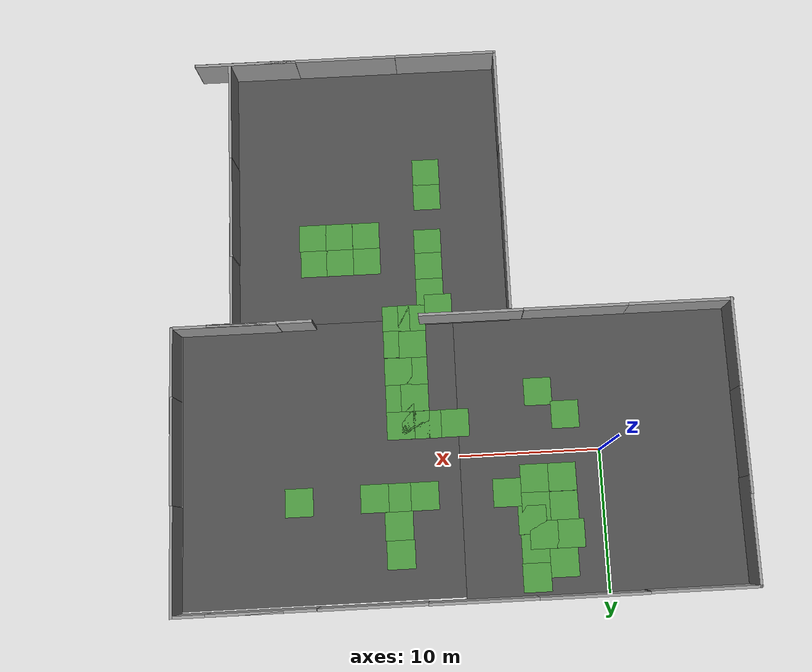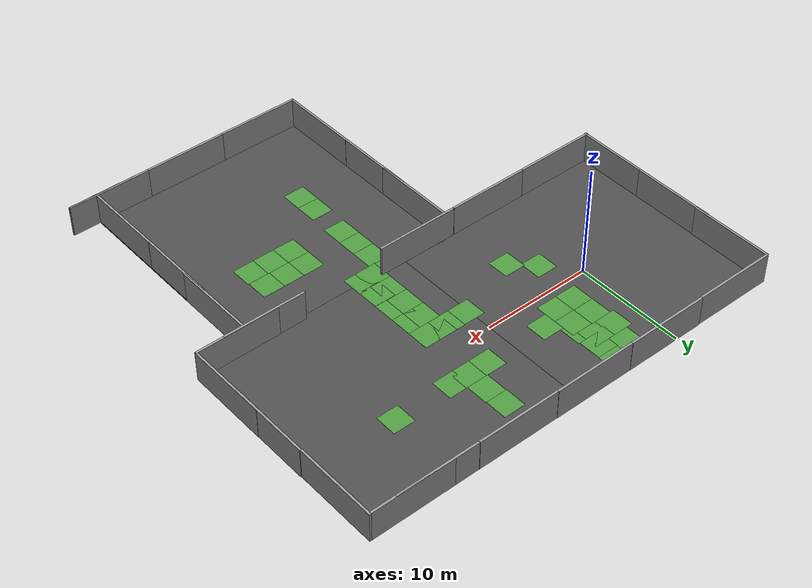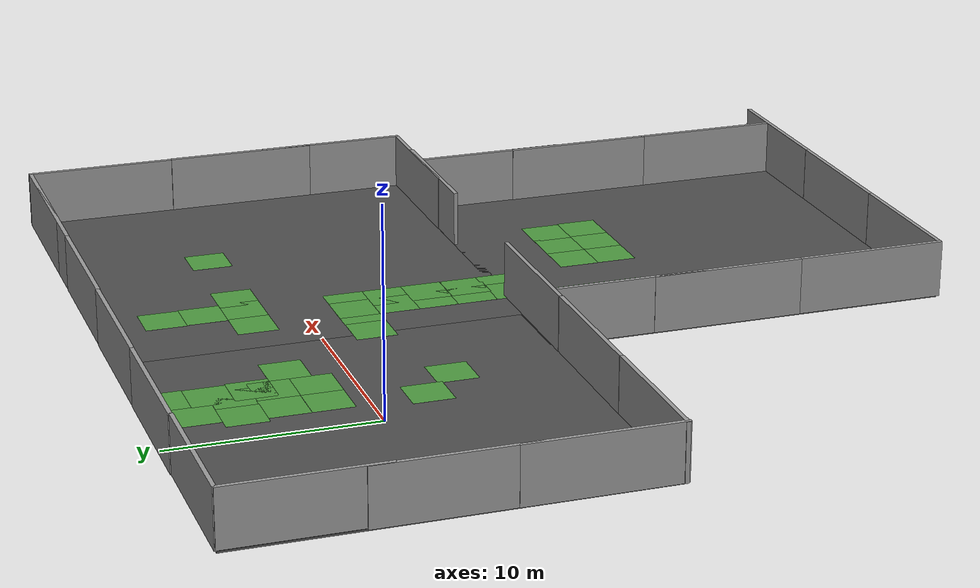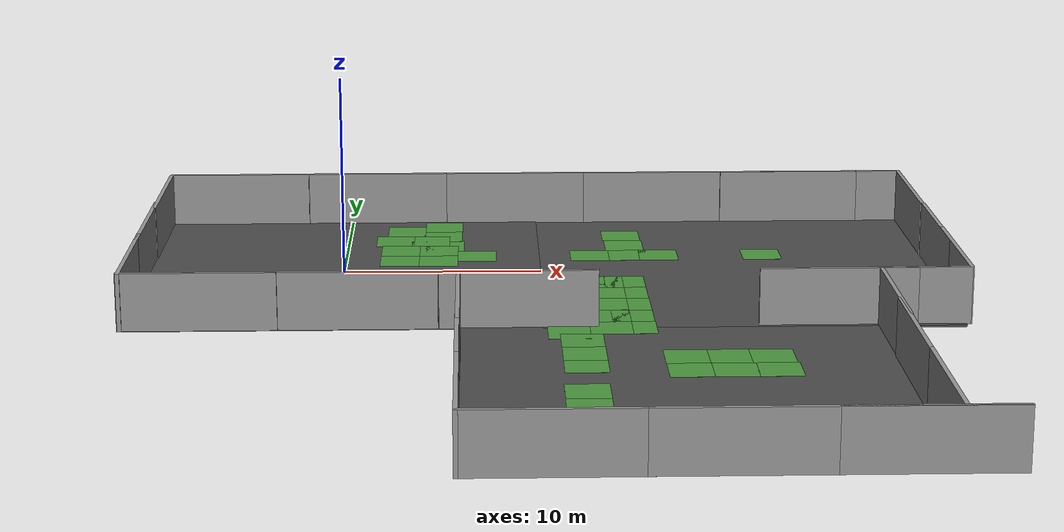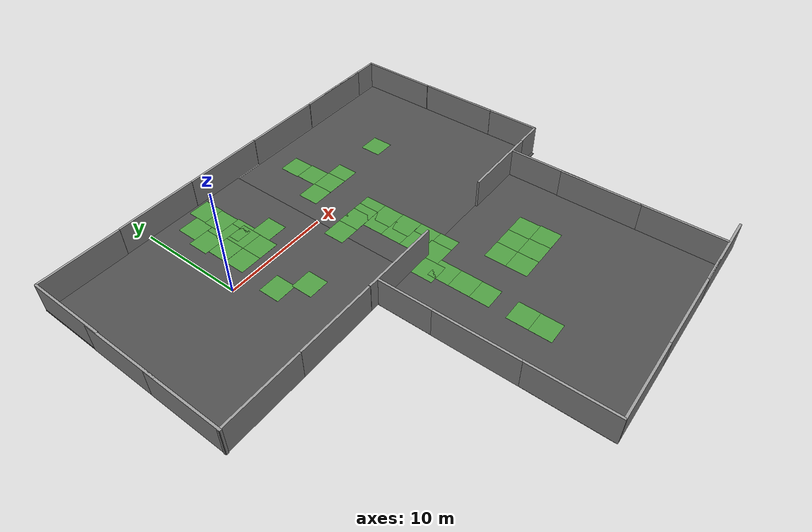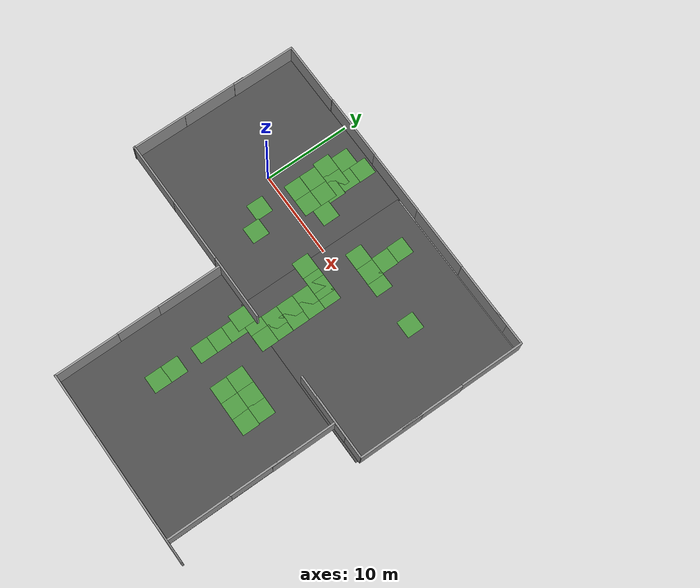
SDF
<sdf version="1.7">
 <world name="default">
  <light name="sun" type="directional">
   <pose>0 0 10 0 -0 0</pose>
   <diffuse>0.8 0.8 0.8 1</diffuse>
   <specular>0.1 0.1 0.1 1</specular>
   <attenuation>
    <range>1000</range>
    <constant>0.9</constant>
    <linear>0.01</linear>
    <quadratic>0.001</quadratic>
   </attenuation>
   <direction>-0.5 0.5 -1</direction>
   <spot><inner_angle>0</inner_angle><outer_angle>0</outer_angle><falloff>0</falloff></spot>
  </light>
  <gravity>0 0 -9.8</gravity>
  <magnetic_field>6e-06 2.3e-05 -4.2e-05</magnetic_field>
  <atmosphere type="adiabatic"/>
  <physics name="default_physics" default="0" type="ode">
   <max_step_size>0.001</max_step_size>
   <real_time_factor>1</real_time_factor>
   <real_time_update_rate>1000</real_time_update_rate>
  </physics>
  <scene><ambient>0.4 0.4 0.4 1</ambient><background>0.7 0.7 0.7 1</background><shadows>1</shadows></scene>
  <spherical_coordinates>
   <surface_model>EARTH_WGS84</surface_model>
   <latitude_deg>0</latitude_deg>
   <longitude_deg>0</longitude_deg>
   <elevation>0</elevation>
   <heading_deg>0</heading_deg>
  </spherical_coordinates>
  <model name="asphalt_plane">
   <static>1</static>
   <link name="link">
    <collision name="collision"><geometry><box><size>20 20 0.1</size></box></geometry></collision>
    <visual name="visual">
     <cast_shadows>0</cast_shadows>
     <geometry><box><size>20 20 0.1</size></box></geometry>
     <material>
      <script>
       <uri>model://asphalt_plane/materials/scripts</uri>
       <uri>model://asphalt_plane/materials/textures</uri>
       <name>vrc/asphalt</name>
      </script>
     </material>
    </visual>
   </link>
  </model>
  <model name="grey_wall">
   <static>1</static>
   <link name="link">
    <pose>0 0 1.4 0 -0 0</pose>
    <collision name="collision"><geometry><box><size>7.5 0.2 2.8</size></box></geometry></collision>
    <visual name="visual">
     <cast_shadows>0</cast_shadows>
     <geometry><box><size>7.5 0.2 2.8</size></box></geometry>
     <material>
      <script>
       <uri>model://grey_wall/materials/scripts</uri>
       <uri>model://grey_wall/materials/textures</uri>
       <name>vrc/grey_wall</name>
      </script>
     </material>
    </visual>
   </link>
   <pose>-6.34299 -9.98083 0 0 -0 0</pose>
  </model>
  <model name="grey_wall_clone">
   <static>1</static>
   <link name="link">
    <pose>0 0 1.4 0 -0 0</pose>
    <collision name="collision"><geometry><box><size>7.5 0.2 2.8</size></box></geometry></collision>
    <visual name="visual">
     <cast_shadows>0</cast_shadows>
     <geometry><box><size>7.5 0.2 2.8</size></box></geometry>
     <material>
      <script>
       <uri>model://grey_wall/materials/scripts</uri>
       <uri>model://grey_wall/materials/textures</uri>
       <name>vrc/grey_wall</name>
      </script>
     </material>
    </visual>
   </link>
   <pose>1.16889 -9.97033 0 0 -0 0</pose>
  </model>
  <model name="grey_wall_clone_0">
   <static>1</static>
   <link name="link">
    <pose>0 0 1.4 0 -0 0</pose>
    <collision name="collision"><geometry><box><size>7.5 0.2 2.8</size></box></geometry></collision>
    <visual name="visual">
     <cast_shadows>0</cast_shadows>
     <geometry><box><size>7.5 0.2 2.8</size></box></geometry>
     <material>
      <script>
       <uri>model://grey_wall/materials/scripts</uri>
       <uri>model://grey_wall/materials/textures</uri>
       <name>vrc/grey_wall</name>
      </script>
     </material>
    </visual>
   </link>
   <pose>8.70546 -9.9612 0 0 -0 0</pose>
  </model>
  <model name="asphalt_plane_0">
   <static>1</static>
   <link name="link">
    <collision name="collision"><geometry><box><size>20 20 0.1</size></box></geometry></collision>
    <visual name="visual">
     <cast_shadows>0</cast_shadows>
     <geometry><box><size>20 20 0.1</size></box></geometry>
     <material>
      <script>
       <uri>model://asphalt_plane/materials/scripts</uri>
       <uri>model://asphalt_plane/materials/textures</uri>
       <name>vrc/asphalt</name>
      </script>
     </material>
    </visual>
   </link>
   <pose>19.8226 -0.232056 0 0 -0 0</pose>
  </model>
  <model name="grey_wall_clone_0_clone_clone">
   <static>1</static>
   <link name="link">
    <pose>0 0 1.4 0 -0 0</pose>
    <collision name="collision"><geometry><box><size>7.5 0.2 2.8</size></box></geometry></collision>
    <visual name="visual">
     <cast_shadows>0</cast_shadows>
     <geometry><box><size>7.5 0.2 2.8</size></box></geometry>
     <material>
      <script>
       <uri>model://grey_wall/materials/scripts</uri>
       <uri>model://grey_wall/materials/textures</uri>
       <name>vrc/grey_wall</name>
      </script>
     </material>
    </visual>
   </link>
   <pose>23.7504 -9.91232 0 0 -0 0</pose>
  </model>
  <model name="grey_wall_clone_0_clone_clone_1">
   <static>1</static>
   <link name="link">
    <pose>0 0 1.4 0 -0 0</pose>
    <collision name="collision"><geometry><box><size>7.5 0.2 2.8</size></box></geometry></collision>
    <visual name="visual">
     <cast_shadows>0</cast_shadows>
     <geometry><box><size>7.5 0.2 2.8</size></box></geometry>
     <material>
      <script>
       <uri>model://grey_wall/materials/scripts</uri>
       <uri>model://grey_wall/materials/textures</uri>
       <name>vrc/grey_wall</name>
      </script>
     </material>
    </visual>
   </link>
   <pose>1.3555 10.0153 0 0 -0 0</pose>
  </model>
  <model name="grey_wall_clone_0_clone_clone_2">
   <static>1</static>
   <link name="link">
    <pose>0 0 1.4 0 -0 0</pose>
    <collision name="collision"><geometry><box><size>7.5 0.2 2.8</size></box></geometry></collision>
    <visual name="visual">
     <cast_shadows>0</cast_shadows>
     <geometry><box><size>7.5 0.2 2.8</size></box></geometry>
     <material>
      <script>
       <uri>model://grey_wall/materials/scripts</uri>
       <uri>model://grey_wall/materials/textures</uri>
       <name>vrc/grey_wall</name>
      </script>
     </material>
    </visual>
   </link>
   <pose>8.86552 9.99863 0 0 -0 0</pose>
  </model>
  <model name="grey_wall_clone_0_clone_clone_0">
   <static>1</static>
   <link name="link">
    <pose>0 0 1.4 0 -0 0</pose>
    <collision name="collision"><geometry><box><size>7.5 0.2 2.8</size></box></geometry></collision>
    <visual name="visual">
     <cast_shadows>0</cast_shadows>
     <geometry><box><size>7.5 0.2 2.8</size></box></geometry>
     <material>
      <script>
       <uri>model://grey_wall/materials/scripts</uri>
       <uri>model://grey_wall/materials/textures</uri>
       <name>vrc/grey_wall</name>
      </script>
     </material>
    </visual>
   </link>
   <pose>-6.16796 9.97781 0 0 -0 0</pose>
  </model>
  <model name="grey_wall_clone_0_clone_clone_3">
   <static>1</static>
   <link name="link">
    <pose>0 0 1.4 0 -0 0</pose>
    <collision name="collision"><geometry><box><size>7.5 0.2 2.8</size></box></geometry></collision>
    <visual name="visual">
     <cast_shadows>0</cast_shadows>
     <geometry><box><size>7.5 0.2 2.8</size></box></geometry>
     <material>
      <script>
       <uri>model://grey_wall/materials/scripts</uri>
       <uri>model://grey_wall/materials/textures</uri>
       <name>vrc/grey_wall</name>
      </script>
     </material>
    </visual>
   </link>
   <pose>16.365 9.97288 0 0 -0 0</pose>
  </model>
  <model name="grey_wall_clone_0_clone_clone_4">
   <static>1</static>
   <link name="link">
    <pose>0 0 1.4 0 -0 0</pose>
    <collision name="collision"><geometry><box><size>7.5 0.2 2.8</size></box></geometry></collision>
    <visual name="visual">
     <cast_shadows>0</cast_shadows>
     <geometry><box><size>7.5 0.2 2.8</size></box></geometry>
     <material>
      <script>
       <uri>model://grey_wall/materials/scripts</uri>
       <uri>model://grey_wall/materials/textures</uri>
       <name>vrc/grey_wall</name>
      </script>
     </material>
    </visual>
   </link>
   <pose>23.8974 9.95874 0 0 -0 0</pose>
  </model>
  <model name="grey_wall_clone_0_clone_clone_4_clone">
   <static>1</static>
   <link name="link">
    <pose>0 0 1.4 0 -0 0</pose>
    <collision name="collision"><geometry><box><size>7.5 0.2 2.8</size></box></geometry></collision>
    <visual name="visual">
     <cast_shadows>0</cast_shadows>
     <geometry><box><size>7.5 0.2 2.8</size></box></geometry>
     <material>
      <script>
       <uri>model://grey_wall/materials/scripts</uri>
       <uri>model://grey_wall/materials/textures</uri>
       <name>vrc/grey_wall</name>
      </script>
     </material>
    </visual>
   </link>
   <pose>29.9378 6.30804 0 0 -0 1.57</pose>
  </model>
  <model name="grey_wall_clone_0_clone_clone_4_clone_0">
   <static>1</static>
   <link name="link">
    <pose>0 0 1.4 0 -0 0</pose>
    <collision name="collision"><geometry><box><size>7.5 0.2 2.8</size></box></geometry></collision>
    <visual name="visual">
     <cast_shadows>0</cast_shadows>
     <geometry><box><size>7.5 0.2 2.8</size></box></geometry>
     <material>
      <script>
       <uri>model://grey_wall/materials/scripts</uri>
       <uri>model://grey_wall/materials/textures</uri>
       <name>vrc/grey_wall</name>
      </script>
     </material>
    </visual>
   </link>
   <pose>26.2746 -9.87846 0 0 -0 0</pose>
  </model>
  <model name="grey_wall_clone_0_clone_clone_4_clone_1">
   <static>1</static>
   <link name="link">
    <pose>0 0 1.4 0 -0 0</pose>
    <collision name="collision"><geometry><box><size>7.5 0.2 2.8</size></box></geometry></collision>
    <visual name="visual">
     <cast_shadows>0</cast_shadows>
     <geometry><box><size>7.5 0.2 2.8</size></box></geometry>
     <material>
      <script>
       <uri>model://grey_wall/materials/scripts</uri>
       <uri>model://grey_wall/materials/textures</uri>
       <name>vrc/grey_wall</name>
      </script>
     </material>
    </visual>
   </link>
   <pose>26.1143 9.96003 0 0 -0 0</pose>
  </model>
  <model name="grey_wall_clone_0_clone_clone_4_clone_clone">
   <static>1</static>
   <link name="link">
    <pose>0 0 1.4 0 -0 0</pose>
    <collision name="collision"><geometry><box><size>7.5 0.2 2.8</size></box></geometry></collision>
    <visual name="visual">
     <cast_shadows>0</cast_shadows>
     <geometry><box><size>7.5 0.2 2.8</size></box></geometry>
     <material>
      <script>
       <uri>model://grey_wall/materials/scripts</uri>
       <uri>model://grey_wall/materials/textures</uri>
       <name>vrc/grey_wall</name>
      </script>
     </material>
    </visual>
   </link>
   <pose>29.9748 -1.21482 0 0 -0 1.57</pose>
  </model>
  <model name="grey_wall_clone_0_clone_clone_4_clone_clone_0">
   <static>1</static>
   <link name="link">
    <pose>0 0 1.4 0 -0 0</pose>
    <collision name="collision"><geometry><box><size>7.5 0.2 2.8</size></box></geometry></collision>
    <visual name="visual">
     <cast_shadows>0</cast_shadows>
     <geometry><box><size>7.5 0.2 2.8</size></box></geometry>
     <material>
      <script>
       <uri>model://grey_wall/materials/scripts</uri>
       <uri>model://grey_wall/materials/textures</uri>
       <name>vrc/grey_wall</name>
      </script>
     </material>
    </visual>
   </link>
   <pose>29.9905 -6.17844 0 0 -0 1.57</pose>
  </model>
  <model name="grey_wall_clone_0_clone_clone_4_clone_clone_1">
   <static>1</static>
   <link name="link">
    <pose>0 0 1.4 0 -0 0</pose>
    <collision name="collision"><geometry><box><size>7.5 0.2 2.8</size></box></geometry></collision>
    <visual name="visual">
     <cast_shadows>0</cast_shadows>
     <geometry><box><size>7.5 0.2 2.8</size></box></geometry>
     <material>
      <script>
       <uri>model://grey_wall/materials/scripts</uri>
       <uri>model://grey_wall/materials/textures</uri>
       <name>vrc/grey_wall</name>
      </script>
     </material>
    </visual>
   </link>
   <pose>-9.87952 6.28271 0 0 -0 1.57</pose>
  </model>
  <model name="grey_wall_clone_0_clone_clone_4_clone_clone_2">
   <static>1</static>
   <link name="link">
    <pose>0 0 1.4 0 -0 0</pose>
    <collision name="collision"><geometry><box><size>7.5 0.2 2.8</size></box></geometry></collision>
    <visual name="visual">
     <cast_shadows>0</cast_shadows>
     <geometry><box><size>7.5 0.2 2.8</size></box></geometry>
     <material>
      <script>
       <uri>model://grey_wall/materials/scripts</uri>
       <uri>model://grey_wall/materials/textures</uri>
       <name>vrc/grey_wall</name>
      </script>
     </material>
    </visual>
   </link>
   <pose>-9.94969 -6.38748 0 0 -0 1.57</pose>
  </model>
  <model name="grey_wall_clone_0_clone_clone_4_clone_clone_3">
   <static>1</static>
   <link name="link">
    <pose>0 0 1.4 0 -0 0</pose>
    <collision name="collision"><geometry><box><size>7.5 0.2 2.8</size></box></geometry></collision>
    <visual name="visual">
     <cast_shadows>0</cast_shadows>
     <geometry><box><size>7.5 0.2 2.8</size></box></geometry>
     <material>
      <script>
       <uri>model://grey_wall/materials/scripts</uri>
       <uri>model://grey_wall/materials/textures</uri>
       <name>vrc/grey_wall</name>
      </script>
     </material>
    </visual>
   </link>
   <pose>-9.93378 0.027886 0 0 -0 1.57</pose>
  </model>
  <audio><device>default</device></audio>
  <model name="asphalt_plane_1">
   <static>1</static>
   <link name="link">
    <collision name="collision"><geometry><box><size>20 20 0.1</size></box></geometry></collision>
    <visual name="visual">
     <cast_shadows>0</cast_shadows>
     <geometry><box><size>20 20 0.1</size></box></geometry>
     <material>
      <script>
       <uri>model://asphalt_plane/materials/scripts</uri>
       <uri>model://asphalt_plane/materials/textures</uri>
       <name>vrc/asphalt</name>
      </script>
     </material>
    </visual>
   </link>
   <pose>15.7958 -19.8064 0 0 -0 0</pose>
  </model>
  <model name="grey_wall_0">
   <static>1</static>
   <link name="link">
    <pose>0 0 1.4 0 -0 0</pose>
    <collision name="collision"><geometry><box><size>7.5 0.2 2.8</size></box></geometry></collision>
    <visual name="visual">
     <cast_shadows>0</cast_shadows>
     <geometry><box><size>7.5 0.2 2.8</size></box></geometry>
     <material>
      <script>
       <uri>model://grey_wall/materials/scripts</uri>
       <uri>model://grey_wall/materials/textures</uri>
       <name>vrc/grey_wall</name>
      </script>
     </material>
    </visual>
   </link>
   <pose>9.57925 -29.847 0 0 -0 0</pose>
  </model>
  <model name="grey_wall_0_clone">
   <static>1</static>
   <link name="link">
    <pose>0 0 1.4 0 -0 0</pose>
    <collision name="collision"><geometry><box><size>7.5 0.2 2.8</size></box></geometry></collision>
    <visual name="visual">
     <cast_shadows>0</cast_shadows>
     <geometry><box><size>7.5 0.2 2.8</size></box></geometry>
     <material>
      <script>
       <uri>model://grey_wall/materials/scripts</uri>
       <uri>model://grey_wall/materials/textures</uri>
       <name>vrc/grey_wall</name>
      </script>
     </material>
    </visual>
   </link>
   <pose>17.0707 -29.8389 0 0 -0 0</pose>
  </model>
  <model name="grey_wall_0_clone_0">
   <static>1</static>
   <link name="link">
    <pose>0 0 1.4 0 -0 0</pose>
    <collision name="collision"><geometry><box><size>7.5 0.2 2.8</size></box></geometry></collision>
    <visual name="visual">
     <cast_shadows>0</cast_shadows>
     <geometry><box><size>7.5 0.2 2.8</size></box></geometry>
     <material>
      <script>
       <uri>model://grey_wall/materials/scripts</uri>
       <uri>model://grey_wall/materials/textures</uri>
       <name>vrc/grey_wall</name>
      </script>
     </material>
    </visual>
   </link>
   <pose>24.5202 -29.8309 0 0 -0 0</pose>
  </model>
  <model name="grey_wall_0_clone_1">
   <static>1</static>
   <link name="link">
    <pose>0 0 1.4 0 -0 0</pose>
    <collision name="collision"><geometry><box><size>7.5 0.2 2.8</size></box></geometry></collision>
    <visual name="visual">
     <cast_shadows>0</cast_shadows>
     <geometry><box><size>7.5 0.2 2.8</size></box></geometry>
     <material>
      <script>
       <uri>model://grey_wall/materials/scripts</uri>
       <uri>model://grey_wall/materials/textures</uri>
       <name>vrc/grey_wall</name>
      </script>
     </material>
    </visual>
   </link>
   <pose>24.5331 -29.8401 0 0 -0 0</pose>
  </model>
  <model name="grey_wall_0_clone_0_clone">
   <static>1</static>
   <link name="link">
    <pose>0 0 1.4 0 -0 0</pose>
    <collision name="collision"><geometry><box><size>7.5 0.2 2.8</size></box></geometry></collision>
    <visual name="visual">
     <cast_shadows>0</cast_shadows>
     <geometry><box><size>7.5 0.2 2.8</size></box></geometry>
     <material>
      <script>
       <uri>model://grey_wall/materials/scripts</uri>
       <uri>model://grey_wall/materials/textures</uri>
       <name>vrc/grey_wall</name>
      </script>
     </material>
    </visual>
   </link>
   <pose>25.6822 -18.7134 0 0 -0 1.57134</pose>
  </model>
  <model name="grey_wall_0_clone_0_clone_0">
   <static>1</static>
   <link name="link">
    <pose>0 0 1.4 0 -0 0</pose>
    <collision name="collision"><geometry><box><size>7.5 0.2 2.8</size></box></geometry></collision>
    <visual name="visual">
     <cast_shadows>0</cast_shadows>
     <geometry><box><size>7.5 0.2 2.8</size></box></geometry>
     <material>
      <script>
       <uri>model://grey_wall/materials/scripts</uri>
       <uri>model://grey_wall/materials/textures</uri>
       <name>vrc/grey_wall</name>
      </script>
     </material>
    </visual>
   </link>
   <pose>25.7225 -13.7256 0 0 -0 1.57134</pose>
  </model>
  <model name="grey_wall_0_clone_0_clone_1">
   <static>1</static>
   <link name="link">
    <pose>0 0 1.4 0 -0 0</pose>
    <collision name="collision"><geometry><box><size>7.5 0.2 2.8</size></box></geometry></collision>
    <visual name="visual">
     <cast_shadows>0</cast_shadows>
     <geometry><box><size>7.5 0.2 2.8</size></box></geometry>
     <material>
      <script>
       <uri>model://grey_wall/materials/scripts</uri>
       <uri>model://grey_wall/materials/textures</uri>
       <name>vrc/grey_wall</name>
      </script>
     </material>
    </visual>
   </link>
   <pose>5.87461 -26.2028 0 0 -0 1.57134</pose>
  </model>
  <model name="grey_wall_0_clone_0_clone_2">
   <static>1</static>
   <link name="link">
    <pose>0 0 1.4 0 -0 0</pose>
    <collision name="collision"><geometry><box><size>7.5 0.2 2.8</size></box></geometry></collision>
    <visual name="visual">
     <cast_shadows>0</cast_shadows>
     <geometry><box><size>7.5 0.2 2.8</size></box></geometry>
     <material>
      <script>
       <uri>model://grey_wall/materials/scripts</uri>
       <uri>model://grey_wall/materials/textures</uri>
       <name>vrc/grey_wall</name>
      </script>
     </material>
    </visual>
   </link>
   <pose>5.85932 -18.753 0 0 -0 1.57134</pose>
  </model>
  <model name="grey_wall_0_clone_0_clone_3">
   <static>1</static>
   <link name="link">
    <pose>0 0 1.4 0 -0 0</pose>
    <collision name="collision"><geometry><box><size>7.5 0.2 2.8</size></box></geometry></collision>
    <visual name="visual">
     <cast_shadows>0</cast_shadows>
     <geometry><box><size>7.5 0.2 2.8</size></box></geometry>
     <material>
      <script>
       <uri>model://grey_wall/materials/scripts</uri>
       <uri>model://grey_wall/materials/textures</uri>
       <name>vrc/grey_wall</name>
      </script>
     </material>
    </visual>
   </link>
   <pose>5.87054 -13.8283 0 0 -0 1.57134</pose>
  </model>
  <model name="grass_7">
   <static>1</static>
   <link name="grass_plane">
    <visual name="visual">
     <pose>0 0 0.07 0 -0 0</pose>
     <cast_shadows>0</cast_shadows>
     <geometry><plane><normal>0 0 1</normal><size>2 2</size></plane></geometry>
     <material>
      <script>
       <uri>model://grass/materials/scripts</uri>
       <uri>model://grass/materials/textures</uri>
       <name>vrc/grass_small</name>
      </script>
     </material>
    </visual>
   </link>
   <pose>4.12441 -4.42703 0 0 -0 0</pose>
  </model>
  <model name="grass_8">
   <static>1</static>
   <link name="grass_plane">
    <visual name="visual">
     <pose>0 0 0.07 0 -0 0</pose>
     <cast_shadows>0</cast_shadows>
     <geometry><plane><normal>0 0 1</normal><size>2 2</size></plane></geometry>
     <material>
      <script>
       <uri>model://grass/materials/scripts</uri>
       <uri>model://grass/materials/textures</uri>
       <name>vrc/grass_small</name>
      </script>
     </material>
    </visual>
   </link>
   <pose>2.25707 -2.67802 0 0 -0 0</pose>
  </model>
  <model name="grass_9">
   <static>1</static>
   <link name="grass_plane">
    <visual name="visual">
     <pose>0 0 0.07 0 -0 0</pose>
     <cast_shadows>0</cast_shadows>
     <geometry><plane><normal>0 0 1</normal><size>2 2</size></plane></geometry>
     <material>
      <script>
       <uri>model://grass/materials/scripts</uri>
       <uri>model://grass/materials/textures</uri>
       <name>vrc/grass_small</name>
      </script>
     </material>
    </visual>
   </link>
   <pose>2.77029 1.78537 0 0 -0 0</pose>
  </model>
  <model name="grass_10">
   <static>1</static>
   <link name="grass_plane">
    <visual name="visual">
     <pose>0 0 0.07 0 -0 0</pose>
     <cast_shadows>0</cast_shadows>
     <geometry><plane><normal>0 0 1</normal><size>2 2</size></plane></geometry>
     <material>
      <script>
       <uri>model://grass/materials/scripts</uri>
       <uri>model://grass/materials/textures</uri>
       <name>vrc/grass_small</name>
      </script>
     </material>
    </visual>
   </link>
   <pose>4.76419 1.781 0 0 -0 0</pose>
  </model>
  <model name="grass_11">
   <static>1</static>
   <link name="grass_plane">
    <visual name="visual">
     <pose>0 0 0.07 0 -0 0</pose>
     <cast_shadows>0</cast_shadows>
     <geometry><plane><normal>0 0 1</normal><size>2 2</size></plane></geometry>
     <material>
      <script>
       <uri>model://grass/materials/scripts</uri>
       <uri>model://grass/materials/textures</uri>
       <name>vrc/grass_small</name>
      </script>
     </material>
    </visual>
   </link>
   <pose>4.76996 3.77141 0 0 -0 0</pose>
  </model>
  <model name="grass_12">
   <static>1</static>
   <link name="grass_plane">
    <visual name="visual">
     <pose>0 0 0.07 0 -0 0</pose>
     <cast_shadows>0</cast_shadows>
     <geometry><plane><normal>0 0 1</normal><size>2 2</size></plane></geometry>
     <material>
      <script>
       <uri>model://grass/materials/scripts</uri>
       <uri>model://grass/materials/textures</uri>
       <name>vrc/grass_small</name>
      </script>
     </material>
    </visual>
   </link>
   <pose>2.77076 3.79474 0 0 -0 0</pose>
  </model>
  <model name="grass_13">
   <static>1</static>
   <link name="grass_plane">
    <visual name="visual">
     <pose>0 0 0.07 0 -0 0</pose>
     <cast_shadows>0</cast_shadows>
     <geometry><plane><normal>0 0 1</normal><size>2 2</size></plane></geometry>
     <material>
      <script>
       <uri>model://grass/materials/scripts</uri>
       <uri>model://grass/materials/textures</uri>
       <name>vrc/grass_small</name>
      </script>
     </material>
    </visual>
   </link>
   <pose>5.07402 4.69573 0 0 -0 0</pose>
  </model>
  <model name="grass_14">
   <static>1</static>
   <link name="grass_plane">
    <visual name="visual">
     <pose>0 0 0.07 0 -0 0</pose>
     <cast_shadows>0</cast_shadows>
     <geometry><plane><normal>0 0 1</normal><size>2 2</size></plane></geometry>
     <material>
      <script>
       <uri>model://grass/materials/scripts</uri>
       <uri>model://grass/materials/textures</uri>
       <name>vrc/grass_small</name>
      </script>
     </material>
    </visual>
   </link>
   <pose>2.44118 5.76888 0 0 -0 0</pose>
  </model>
  <model name="grass_15">
   <static>1</static>
   <link name="grass_plane">
    <visual name="visual">
     <pose>0 0 0.07 0 -0 0</pose>
     <cast_shadows>0</cast_shadows>
     <geometry><plane><normal>0 0 1</normal><size>2 2</size></plane></geometry>
     <material>
      <script>
       <uri>model://grass/materials/scripts</uri>
       <uri>model://grass/materials/textures</uri>
       <name>vrc/grass_small</name>
      </script>
     </material>
    </visual>
   </link>
   <pose>4.31467 5.7511 0 0 -0 0</pose>
  </model>
  <model name="grass_16">
   <static>1</static>
   <link name="grass_plane">
    <visual name="visual">
     <pose>0 0 0.07 0 -0 0</pose>
     <cast_shadows>0</cast_shadows>
     <geometry><plane><normal>0 0 1</normal><size>2 2</size></plane></geometry>
     <material>
      <script>
       <uri>model://grass/materials/scripts</uri>
       <uri>model://grass/materials/textures</uri>
       <name>vrc/grass_small</name>
      </script>
     </material>
    </visual>
   </link>
   <pose>4.95815 6.70014 0 0 -0 0</pose>
  </model>
  <model name="grass_17">
   <static>1</static>
   <link name="grass_plane">
    <visual name="visual">
     <pose>0 0 0.07 0 -0 0</pose>
     <cast_shadows>0</cast_shadows>
     <geometry><plane><normal>0 0 1</normal><size>2 2</size></plane></geometry>
     <material>
      <script>
       <uri>model://grass/materials/scripts</uri>
       <uri>model://grass/materials/textures</uri>
       <name>vrc/grass_small</name>
      </script>
     </material>
    </visual>
   </link>
   <pose>3.00465 7.76167 0 0 -0 0</pose>
  </model>
  <model name="grass_18">
   <static>1</static>
   <link name="grass_plane">
    <visual name="visual">
     <pose>0 0 0.07 0 -0 0</pose>
     <cast_shadows>0</cast_shadows>
     <geometry><plane><normal>0 0 1</normal><size>2 2</size></plane></geometry>
     <material>
      <script>
       <uri>model://grass/materials/scripts</uri>
       <uri>model://grass/materials/textures</uri>
       <name>vrc/grass_small</name>
      </script>
     </material>
    </visual>
   </link>
   <pose>4.99418 8.69495 0 0 -0 0</pose>
  </model>
  <model name="grass_19">
   <static>1</static>
   <link name="grass_plane">
    <visual name="visual">
     <pose>0 0 0.07 0 -0 0</pose>
     <cast_shadows>0</cast_shadows>
     <geometry><plane><normal>0 0 1</normal><size>2 2</size></plane></geometry>
     <material>
      <script>
       <uri>model://grass/materials/scripts</uri>
       <uri>model://grass/materials/textures</uri>
       <name>vrc/grass_small</name>
      </script>
     </material>
    </visual>
   </link>
   <pose>6.75658 2.70708 0 0 -0 0</pose>
  </model>
  <model name="grass_20">
   <static>1</static>
   <link name="grass_plane">
    <visual name="visual">
     <pose>0 0 0.07 0 -0 0</pose>
     <cast_shadows>0</cast_shadows>
     <geometry><plane><normal>0 0 1</normal><size>2 2</size></plane></geometry>
     <material>
      <script>
       <uri>model://grass/materials/scripts</uri>
       <uri>model://grass/materials/textures</uri>
       <name>vrc/grass_small</name>
      </script>
     </material>
    </visual>
   </link>
   <pose>12.6119 2.65209 0 0 -0 0</pose>
  </model>
  <model name="grass_21">
   <static>1</static>
   <link name="grass_plane">
    <visual name="visual">
     <pose>0 0 0.07 0 -0 0</pose>
     <cast_shadows>0</cast_shadows>
     <geometry><plane><normal>0 0 1</normal><size>2 2</size></plane></geometry>
     <material>
      <script>
       <uri>model://grass/materials/scripts</uri>
       <uri>model://grass/materials/textures</uri>
       <name>vrc/grass_small</name>
      </script>
     </material>
    </visual>
   </link>
   <pose>14.6105 2.65182 0 0 -0 0</pose>
  </model>
  <model name="grass_22">
   <static>1</static>
   <link name="grass_plane">
    <visual name="visual">
     <pose>0 0 0.07 0 -0 0</pose>
     <cast_shadows>0</cast_shadows>
     <geometry><plane><normal>0 0 1</normal><size>2 2</size></plane></geometry>
     <material>
      <script>
       <uri>model://grass/materials/scripts</uri>
       <uri>model://grass/materials/textures</uri>
       <name>vrc/grass_small</name>
      </script>
     </material>
    </visual>
   </link>
   <pose>16.1898 2.64487 0 0 -0 0</pose>
  </model>
  <model name="grass_23">
   <static>1</static>
   <link name="grass_plane">
    <visual name="visual">
     <pose>0 0 0.07 0 -0 0</pose>
     <cast_shadows>0</cast_shadows>
     <geometry><plane><normal>0 0 1</normal><size>2 2</size></plane></geometry>
     <material>
      <script>
       <uri>model://grass/materials/scripts</uri>
       <uri>model://grass/materials/textures</uri>
       <name>vrc/grass_small</name>
      </script>
     </material>
    </visual>
   </link>
   <pose>14.5111 4.64952 0 0 -0 0</pose>
  </model>
  <model name="grass_24">
   <static>1</static>
   <link name="grass_plane">
    <visual name="visual">
     <pose>0 0 0.07 0 -0 0</pose>
     <cast_shadows>0</cast_shadows>
     <geometry><plane><normal>0 0 1</normal><size>2 2</size></plane></geometry>
     <material>
      <script>
       <uri>model://grass/materials/scripts</uri>
       <uri>model://grass/materials/textures</uri>
       <name>vrc/grass_small</name>
      </script>
     </material>
    </visual>
   </link>
   <pose>14.453 6.64404 0 0 -0 0</pose>
  </model>
  <model name="grass_25">
   <static>1</static>
   <link name="grass_plane">
    <visual name="visual">
     <pose>0 0 0.07 0 -0 0</pose>
     <cast_shadows>0</cast_shadows>
     <geometry><plane><normal>0 0 1</normal><size>2 2</size></plane></geometry>
     <material>
      <script>
       <uri>model://grass/materials/scripts</uri>
       <uri>model://grass/materials/textures</uri>
       <name>vrc/grass_small</name>
      </script>
     </material>
    </visual>
   </link>
   <pose>21.5588 2.67354 0 0 -0 0</pose>
  </model>
  <model name="grass_29">
   <static>1</static>
   <link name="grass_plane">
    <visual name="visual">
     <pose>0 0 0.07 0 -0 0</pose>
     <cast_shadows>0</cast_shadows>
     <geometry><plane><normal>0 0 1</normal><size>2 2</size></plane></geometry>
     <material>
      <script>
       <uri>model://grass/materials/scripts</uri>
       <uri>model://grass/materials/textures</uri>
       <name>vrc/grass_small</name>
      </script>
     </material>
    </visual>
   </link>
   <pose>13.0426 -2.44236 0 0 -0 0</pose>
  </model>
  <model name="grass_30">
   <static>1</static>
   <link name="grass_plane">
    <visual name="visual">
     <pose>0 0 0.07 0 -0 0</pose>
     <cast_shadows>0</cast_shadows>
     <geometry><plane><normal>0 0 1</normal><size>2 2</size></plane></geometry>
     <material>
      <script>
       <uri>model://grass/materials/scripts</uri>
       <uri>model://grass/materials/textures</uri>
       <name>vrc/grass_small</name>
      </script>
     </material>
    </visual>
   </link>
   <pose>13.0362 -4.44807 0 0 -0 0</pose>
  </model>
  <model name="grass_31">
   <static>1</static>
   <link name="grass_plane">
    <visual name="visual">
     <pose>0 0 0.07 0 -0 0</pose>
     <cast_shadows>0</cast_shadows>
     <geometry><plane><normal>0 0 1</normal><size>2 2</size></plane></geometry>
     <material>
      <script>
       <uri>model://grass/materials/scripts</uri>
       <uri>model://grass/materials/textures</uri>
       <name>vrc/grass_small</name>
      </script>
     </material>
    </visual>
   </link>
   <pose>13.0316 -6.39233 0 0 -0 0</pose>
  </model>
  <model name="grass_32">
   <static>1</static>
   <link name="grass_plane">
    <visual name="visual">
     <pose>0 0 0.07 0 -0 0</pose>
     <cast_shadows>0</cast_shadows>
     <geometry><plane><normal>0 0 1</normal><size>2 2</size></plane></geometry>
     <material>
      <script>
       <uri>model://grass/materials/scripts</uri>
       <uri>model://grass/materials/textures</uri>
       <name>vrc/grass_small</name>
      </script>
     </material>
    </visual>
   </link>
   <pose>13.0374 -8.37767 0 0 -0 0</pose>
  </model>
  <model name="grass_33">
   <static>1</static>
   <link name="grass_plane">
    <visual name="visual">
     <pose>0 0 0.07 0 -0 0</pose>
     <cast_shadows>0</cast_shadows>
     <geometry><plane><normal>0 0 1</normal><size>2 2</size></plane></geometry>
     <material>
      <script>
       <uri>model://grass/materials/scripts</uri>
       <uri>model://grass/materials/textures</uri>
       <name>vrc/grass_small</name>
      </script>
     </material>
    </visual>
   </link>
   <pose>13.0256 -10.3198 0 0 -0 0</pose>
  </model>
  <model name="grass_34">
   <static>1</static>
   <link name="grass_plane">
    <visual name="visual">
     <pose>0 0 0.07 0 -0 0</pose>
     <cast_shadows>0</cast_shadows>
     <geometry><plane><normal>0 0 1</normal><size>2 2</size></plane></geometry>
     <material>
      <script>
       <uri>model://grass/materials/scripts</uri>
       <uri>model://grass/materials/textures</uri>
       <name>vrc/grass_small</name>
      </script>
     </material>
    </visual>
   </link>
   <pose>11.0284 -11.0594 0 0 -0 0</pose>
  </model>
  <model name="grass_35">
   <static>1</static>
   <link name="grass_plane">
    <visual name="visual">
     <pose>0 0 0.07 0 -0 0</pose>
     <cast_shadows>0</cast_shadows>
     <geometry><plane><normal>0 0 1</normal><size>2 2</size></plane></geometry>
     <material>
      <script>
       <uri>model://grass/materials/scripts</uri>
       <uri>model://grass/materials/textures</uri>
       <name>vrc/grass_small</name>
      </script>
     </material>
    </visual>
   </link>
   <pose>11.5946 -12.2819 0 0 -0 0</pose>
  </model>
  <model name="grass_36">
   <static>1</static>
   <link name="grass_plane">
    <visual name="visual">
     <pose>0 0 0.07 0 -0 0</pose>
     <cast_shadows>0</cast_shadows>
     <geometry><plane><normal>0 0 1</normal><size>2 2</size></plane></geometry>
     <material>
      <script>
       <uri>model://grass/materials/scripts</uri>
       <uri>model://grass/materials/textures</uri>
       <name>vrc/grass_small</name>
      </script>
     </material>
    </visual>
   </link>
   <pose>11.5994 -14.2699 0 0 -0 0</pose>
  </model>
  <model name="grass_37">
   <static>1</static>
   <link name="grass_plane">
    <visual name="visual">
     <pose>0 0 0.07 0 -0 0</pose>
     <cast_shadows>0</cast_shadows>
     <geometry><plane><normal>0 0 1</normal><size>2 2</size></plane></geometry>
     <material>
      <script>
       <uri>model://grass/materials/scripts</uri>
       <uri>model://grass/materials/textures</uri>
       <name>vrc/grass_small</name>
      </script>
     </material>
    </visual>
   </link>
   <pose>11.5939 -16.0745 0 0 -0 0</pose>
  </model>
  <model name="grass_38">
   <static>1</static>
   <link name="grass_plane">
    <visual name="visual">
     <pose>0 0 0.07 0 -0 0</pose>
     <cast_shadows>0</cast_shadows>
     <geometry><plane><normal>0 0 1</normal><size>2 2</size></plane></geometry>
     <material>
      <script>
       <uri>model://grass/materials/scripts</uri>
       <uri>model://grass/materials/textures</uri>
       <name>vrc/grass_small</name>
      </script>
     </material>
    </visual>
   </link>
   <pose>11.491 -19.6396 0 0 -0 0</pose>
  </model>
  <model name="grass_39">
   <static>1</static>
   <link name="grass_plane">
    <visual name="visual">
     <pose>0 0 0.07 0 -0 0</pose>
     <cast_shadows>0</cast_shadows>
     <geometry><plane><normal>0 0 1</normal><size>2 2</size></plane></geometry>
     <material>
      <script>
       <uri>model://grass/materials/scripts</uri>
       <uri>model://grass/materials/textures</uri>
       <name>vrc/grass_small</name>
      </script>
     </material>
    </visual>
   </link>
   <pose>11.4838 -21.5952 0 0 -0 0</pose>
  </model>
  <model name="grey_wall_0_clone_0_clone_clone">
   <static>1</static>
   <link name="link">
    <pose>0 0 1.4 0 -0 0</pose>
    <collision name="collision"><geometry><box><size>7.5 0.2 2.8</size></box></geometry></collision>
    <visual name="visual">
     <cast_shadows>0</cast_shadows>
     <geometry><box><size>7.5 0.2 2.8</size></box></geometry>
     <material>
      <script>
       <uri>model://grey_wall/materials/scripts</uri>
       <uri>model://grey_wall/materials/textures</uri>
       <name>vrc/grey_wall</name>
      </script>
     </material>
    </visual>
   </link>
   <pose>25.6936 -26.0808 0 0 -0 1.57134</pose>
  </model>
  <model name="grass">
   <static>1</static>
   <link name="grass_plane">
    <visual name="visual">
     <pose>0 0 0.07 0 -0 0</pose>
     <cast_shadows>0</cast_shadows>
     <geometry><plane><normal>0 0 1</normal><size>2 2</size></plane></geometry>
     <material>
      <script>
       <uri>model://grass/materials/scripts</uri>
       <uri>model://grass/materials/textures</uri>
       <name>vrc/grass_small</name>
      </script>
     </material>
    </visual>
   </link>
   <pose>12.2113 -2.43669 0 0 -0 0</pose>
  </model>
  <model name="grass_0">
   <static>1</static>
   <link name="grass_plane">
    <visual name="visual">
     <pose>0 0 0.07 0 -0 0</pose>
     <cast_shadows>0</cast_shadows>
     <geometry><plane><normal>0 0 1</normal><size>2 2</size></plane></geometry>
     <material>
      <script>
       <uri>model://grass/materials/scripts</uri>
       <uri>model://grass/materials/textures</uri>
       <name>vrc/grass_small</name>
      </script>
     </material>
    </visual>
   </link>
   <pose>10.2104 -2.45309 0 0 -0 0</pose>
  </model>
  <model name="grass_1">
   <static>1</static>
   <link name="grass_plane">
    <visual name="visual">
     <pose>0 0 0.07 0 -0 0</pose>
     <cast_shadows>0</cast_shadows>
     <geometry><plane><normal>0 0 1</normal><size>2 2</size></plane></geometry>
     <material>
      <script>
       <uri>model://grass/materials/scripts</uri>
       <uri>model://grass/materials/textures</uri>
       <name>vrc/grass_small</name>
      </script>
     </material>
    </visual>
   </link>
   <pose>14.1309 -2.44805 0 0 -0 0</pose>
  </model>
  <model name="grass_2">
   <static>1</static>
   <link name="grass_plane">
    <visual name="visual">
     <pose>0 0 0.07 0 -0 0</pose>
     <cast_shadows>0</cast_shadows>
     <geometry><plane><normal>0 0 1</normal><size>2 2</size></plane></geometry>
     <material>
      <script>
       <uri>model://grass/materials/scripts</uri>
       <uri>model://grass/materials/textures</uri>
       <name>vrc/grass_small</name>
      </script>
     </material>
    </visual>
   </link>
   <pose>14.1309 -4.44433 0 0 -0 0</pose>
  </model>
  <model name="grass_3">
   <static>1</static>
   <link name="grass_plane">
    <visual name="visual">
     <pose>0 0 0.07 0 -0 0</pose>
     <cast_shadows>0</cast_shadows>
     <geometry><plane><normal>0 0 1</normal><size>2 2</size></plane></geometry>
     <material>
      <script>
       <uri>model://grass/materials/scripts</uri>
       <uri>model://grass/materials/textures</uri>
       <name>vrc/grass_small</name>
      </script>
     </material>
    </visual>
   </link>
   <pose>14.1501 -6.42163 0 0 -0 0</pose>
  </model>
  <model name="grass_4">
   <static>1</static>
   <link name="grass_plane">
    <visual name="visual">
     <pose>0 0 0.07 0 -0 0</pose>
     <cast_shadows>0</cast_shadows>
     <geometry><plane><normal>0 0 1</normal><size>2 2</size></plane></geometry>
     <material>
      <script>
       <uri>model://grass/materials/scripts</uri>
       <uri>model://grass/materials/textures</uri>
       <name>vrc/grass_small</name>
      </script>
     </material>
    </visual>
   </link>
   <pose>14.1501 -8.43739 0 0 -0 0</pose>
  </model>
  <model name="grass_5">
   <static>1</static>
   <link name="grass_plane">
    <visual name="visual">
     <pose>0 0 0.07 0 -0 0</pose>
     <cast_shadows>0</cast_shadows>
     <geometry><plane><normal>0 0 1</normal><size>2 2</size></plane></geometry>
     <material>
      <script>
       <uri>model://grass/materials/scripts</uri>
       <uri>model://grass/materials/textures</uri>
       <name>vrc/grass_small</name>
      </script>
     </material>
    </visual>
   </link>
   <pose>14.1691 -10.2985 0 0 -0 0</pose>
  </model>
  <model name="grass_6">
   <static>1</static>
   <link name="grass_plane">
    <visual name="visual">
     <pose>0 0 0.07 0 -0 0</pose>
     <cast_shadows>0</cast_shadows>
     <geometry><plane><normal>0 0 1</normal><size>2 2</size></plane></geometry>
     <material>
      <script>
       <uri>model://grass/materials/scripts</uri>
       <uri>model://grass/materials/textures</uri>
       <name>vrc/grass_small</name>
      </script>
     </material>
    </visual>
   </link>
   <pose>16.1617 -14.8251 0 0 -0 0</pose>
  </model>
  <model name="grass_28">
   <static>1</static>
   <link name="grass_plane">
    <visual name="visual">
     <pose>0 0 0.07 0 -0 0</pose>
     <cast_shadows>0</cast_shadows>
     <geometry><plane><normal>0 0 1</normal><size>2 2</size></plane></geometry>
     <material>
      <script>
       <uri>model://grass/materials/scripts</uri>
       <uri>model://grass/materials/textures</uri>
       <name>vrc/grass_small</name>
      </script>
     </material>
    </visual>
   </link>
   <pose>16.1769 -16.8128 0 0 -0 0</pose>
  </model>
  <model name="grass_40">
   <static>1</static>
   <link name="grass_plane">
    <visual name="visual">
     <pose>0 0 0.07 0 -0 0</pose>
     <cast_shadows>0</cast_shadows>
     <geometry><plane><normal>0 0 1</normal><size>2 2</size></plane></geometry>
     <material>
      <script>
       <uri>model://grass/materials/scripts</uri>
       <uri>model://grass/materials/textures</uri>
       <name>vrc/grass_small</name>
      </script>
     </material>
    </visual>
   </link>
   <pose>18.157 -14.8249 0 0 -0 0</pose>
  </model>
  <model name="grass_41">
   <static>1</static>
   <link name="grass_plane">
    <visual name="visual">
     <pose>0 0 0.07 0 -0 0</pose>
     <cast_shadows>0</cast_shadows>
     <geometry><plane><normal>0 0 1</normal><size>2 2</size></plane></geometry>
     <material>
      <script>
       <uri>model://grass/materials/scripts</uri>
       <uri>model://grass/materials/textures</uri>
       <name>vrc/grass_small</name>
      </script>
     </material>
    </visual>
   </link>
   <pose>18.1793 -16.8221 0 0 -0 0</pose>
  </model>
  <model name="grass_43">
   <static>1</static>
   <link name="grass_plane">
    <visual name="visual">
     <pose>0 0 0.07 0 -0 0</pose>
     <cast_shadows>0</cast_shadows>
     <geometry><plane><normal>0 0 1</normal><size>2 2</size></plane></geometry>
     <material>
      <script>
       <uri>model://grass/materials/scripts</uri>
       <uri>model://grass/materials/textures</uri>
       <name>vrc/grass_small</name>
      </script>
     </material>
    </visual>
   </link>
   <pose>20.0596 -14.8262 0 0 -0 0</pose>
  </model>
  <model name="grass_44">
   <static>1</static>
   <link name="grass_plane">
    <visual name="visual">
     <pose>0 0 0.07 0 -0 0</pose>
     <cast_shadows>0</cast_shadows>
     <geometry><plane><normal>0 0 1</normal><size>2 2</size></plane></geometry>
     <material>
      <script>
       <uri>model://grass/materials/scripts</uri>
       <uri>model://grass/materials/textures</uri>
       <name>vrc/grass_small</name>
      </script>
     </material>
    </visual>
   </link>
   <pose>20.1442 -16.8222 0 0 -0 0</pose>
  </model>
 </world>
</sdf>
